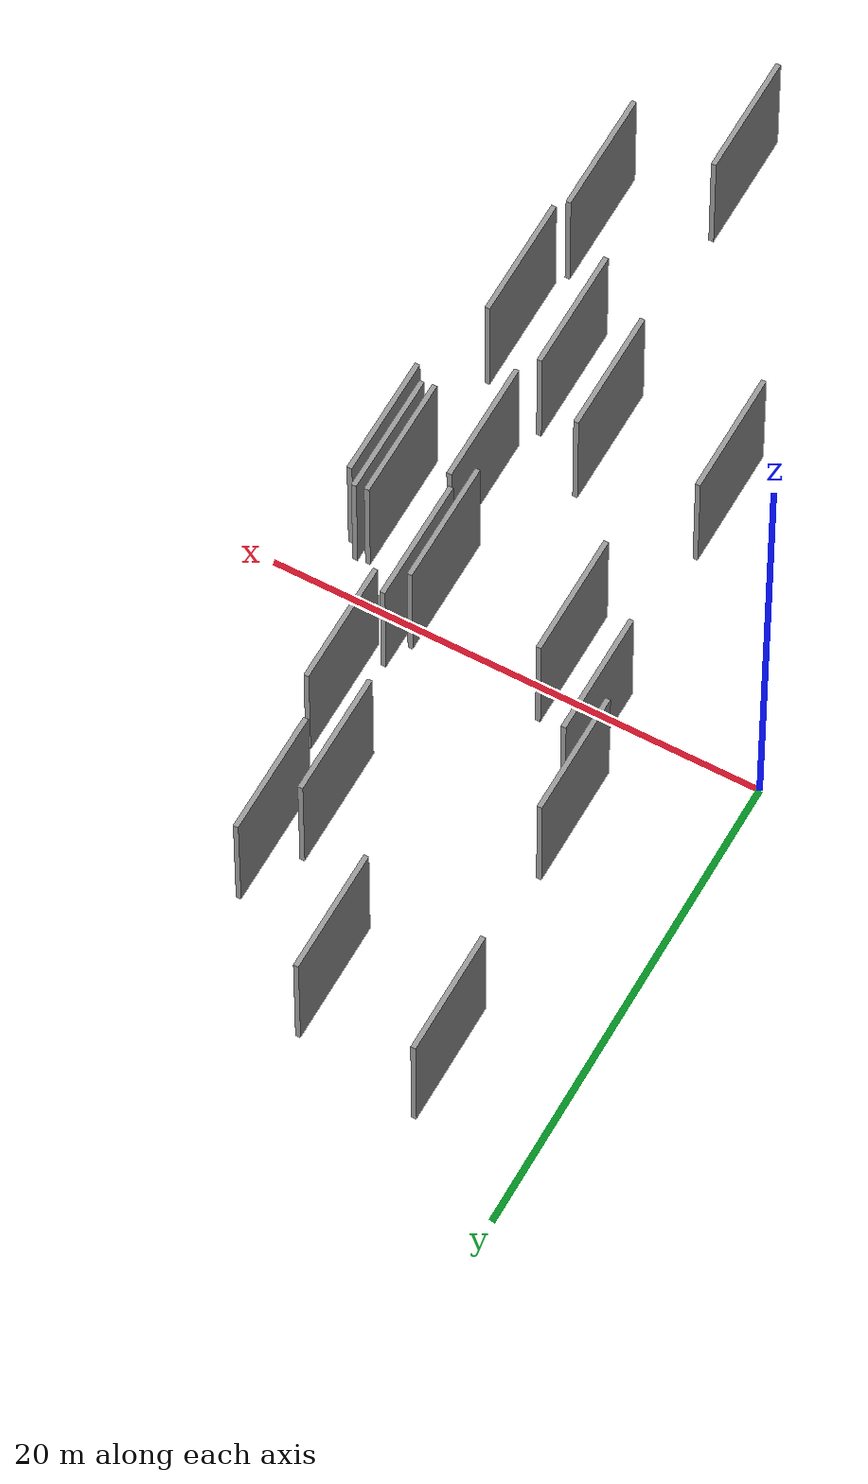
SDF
<sdf version="1.6">
 <world name="default">
  <scene>
   <sky><clouds><speed>12</speed></clouds></sky>
   <ambient>0.4 0.4 0.4 1</ambient>
   <background>0.7 0.7 0.7 1</background>
   <shadows>1</shadows>
  </scene>
  <gravity>0 0 -9.8066</gravity>
  <magnetic_field>6e-06 2.3e-05 -4.2e-05</magnetic_field>
  <physics default="0" name="default_physics" type="ode">
   <ode>
    <solver>
     <type>quick</type>
     <iters>10</iters>
     <sor>1.0</sor>
     <use_dynamic_moi_rescaling>0</use_dynamic_moi_rescaling>
    </solver>
    <constraints>
     <cfm>0</cfm>
     <erp>0.2</erp>
     <contact_max_correcting_vel>100</contact_max_correcting_vel>
     <contact_surface_layer>0.001</contact_surface_layer>
    </constraints>
   </ode>
   <max_step_size>0.004</max_step_size>
   <real_time_factor>1</real_time_factor>
   <real_time_update_rate>250</real_time_update_rate>
  </physics>
  <light name="sun" type="directional">
   <pose>0 0 10 0 0 0</pose>
   <diffuse>0.8 0.8 0.8 1</diffuse>
   <specular>0.2 0.2 0.2 1</specular>
   <attenuation>
    <range>1000</range>
    <constant>0.9</constant>
    <linear>0.01</linear>
    <quadratic>0.001</quadratic>
   </attenuation>
   <direction>-0.5 0.1 -0.9</direction>
  </light>
  <model name="grey_wall_1">
   <static>1</static>
   <pose>15.3775 -10.1875 5.0 0.000000 0.000000 1.570796</pose>
   <link name="link">
    <pose>0 0 2.50 0 0 0</pose>
    <collision name="collision"><geometry><box><size>5.00 0.2 5.00</size></box></geometry></collision>
    <visual name="visual">
     <cast_shadows>0</cast_shadows>
     <geometry><box><size>5.00 0.2 5.00</size></box></geometry>
     <material>
      <script>
       <uri>model://grey_wall/materials/scripts</uri>
       <uri>model://grey_wall/materials/textures</uri>
       <name>vrc/grey_wall</name>
      </script>
     </material>
    </visual>
   </link>
  </model>
  <model name="grey_wall_2">
   <static>1</static>
   <pose>16.4148 -1.9081 5.0 0.000000 0.000000 1.570796</pose>
   <link name="link">
    <pose>0 0 2.50 0 0 0</pose>
    <collision name="collision"><geometry><box><size>5.00 0.2 5.00</size></box></geometry></collision>
    <visual name="visual">
     <cast_shadows>0</cast_shadows>
     <geometry><box><size>5.00 0.2 5.00</size></box></geometry>
     <material>
      <script>
       <uri>model://grey_wall/materials/scripts</uri>
       <uri>model://grey_wall/materials/textures</uri>
       <name>vrc/grey_wall</name>
      </script>
     </material>
    </visual>
   </link>
  </model>
  <model name="grey_wall_3">
   <static>1</static>
   <pose>15.4398 -1.4060 5.0 0.000000 0.000000 1.570796</pose>
   <link name="link">
    <pose>0 0 2.50 0 0 0</pose>
    <collision name="collision"><geometry><box><size>5.00 0.2 5.00</size></box></geometry></collision>
    <visual name="visual">
     <cast_shadows>0</cast_shadows>
     <geometry><box><size>5.00 0.2 5.00</size></box></geometry>
     <material>
      <script>
       <uri>model://grey_wall/materials/scripts</uri>
       <uri>model://grey_wall/materials/textures</uri>
       <name>vrc/grey_wall</name>
      </script>
     </material>
    </visual>
   </link>
  </model>
  <model name="grey_wall_4">
   <static>1</static>
   <pose>11.1931 -19.5328 5.0 0.000000 0.000000 1.570796</pose>
   <link name="link">
    <pose>0 0 2.50 0 0 0</pose>
    <collision name="collision"><geometry><box><size>5.00 0.2 5.00</size></box></geometry></collision>
    <visual name="visual">
     <cast_shadows>0</cast_shadows>
     <geometry><box><size>5.00 0.2 5.00</size></box></geometry>
     <material>
      <script>
       <uri>model://grey_wall/materials/scripts</uri>
       <uri>model://grey_wall/materials/textures</uri>
       <name>vrc/grey_wall</name>
      </script>
     </material>
    </visual>
   </link>
  </model>
  <model name="grey_wall_5">
   <static>1</static>
   <pose>13.1981 -3.3880 5.0 0.000000 0.000000 1.570796</pose>
   <link name="link">
    <pose>0 0 2.50 0 0 0</pose>
    <collision name="collision"><geometry><box><size>5.00 0.2 5.00</size></box></geometry></collision>
    <visual name="visual">
     <cast_shadows>0</cast_shadows>
     <geometry><box><size>5.00 0.2 5.00</size></box></geometry>
     <material>
      <script>
       <uri>model://grey_wall/materials/scripts</uri>
       <uri>model://grey_wall/materials/textures</uri>
       <name>vrc/grey_wall</name>
      </script>
     </material>
    </visual>
   </link>
  </model>
  <model name="grey_wall_6">
   <static>1</static>
   <pose>4.6609 3.8503 5.0 0.000000 0.000000 1.570796</pose>
   <link name="link">
    <pose>0 0 2.50 0 0 0</pose>
    <collision name="collision"><geometry><box><size>5.00 0.2 5.00</size></box></geometry></collision>
    <visual name="visual">
     <cast_shadows>0</cast_shadows>
     <geometry><box><size>5.00 0.2 5.00</size></box></geometry>
     <material>
      <script>
       <uri>model://grey_wall/materials/scripts</uri>
       <uri>model://grey_wall/materials/textures</uri>
       <name>vrc/grey_wall</name>
      </script>
     </material>
    </visual>
   </link>
  </model>
  <model name="grey_wall_7">
   <static>1</static>
   <pose>3.0656 17.5782 5.0 0.000000 0.000000 1.570796</pose>
   <link name="link">
    <pose>0 0 2.50 0 0 0</pose>
    <collision name="collision"><geometry><box><size>5.00 0.2 5.00</size></box></geometry></collision>
    <visual name="visual">
     <cast_shadows>0</cast_shadows>
     <geometry><box><size>5.00 0.2 5.00</size></box></geometry>
     <material>
      <script>
       <uri>model://grey_wall/materials/scripts</uri>
       <uri>model://grey_wall/materials/textures</uri>
       <name>vrc/grey_wall</name>
      </script>
     </material>
    </visual>
   </link>
  </model>
  <model name="grey_wall_8">
   <static>1</static>
   <pose>12.6798 -9.1281 5.0 0.000000 0.000000 1.570796</pose>
   <link name="link">
    <pose>0 0 2.50 0 0 0</pose>
    <collision name="collision"><geometry><box><size>5.00 0.2 5.00</size></box></geometry></collision>
    <visual name="visual">
     <cast_shadows>0</cast_shadows>
     <geometry><box><size>5.00 0.2 5.00</size></box></geometry>
     <material>
      <script>
       <uri>model://grey_wall/materials/scripts</uri>
       <uri>model://grey_wall/materials/textures</uri>
       <name>vrc/grey_wall</name>
      </script>
     </material>
    </visual>
   </link>
  </model>
  <model name="grey_wall_9">
   <static>1</static>
   <pose>13.5523 6.3333 5.0 0.000000 0.000000 1.570796</pose>
   <link name="link">
    <pose>0 0 2.50 0 0 0</pose>
    <collision name="collision"><geometry><box><size>5.00 0.2 5.00</size></box></geometry></collision>
    <visual name="visual">
     <cast_shadows>0</cast_shadows>
     <geometry><box><size>5.00 0.2 5.00</size></box></geometry>
     <material>
      <script>
       <uri>model://grey_wall/materials/scripts</uri>
       <uri>model://grey_wall/materials/textures</uri>
       <name>vrc/grey_wall</name>
      </script>
     </material>
    </visual>
   </link>
  </model>
  <model name="grey_wall_10">
   <static>1</static>
   <pose>6.9719 1.4246 5.0 0.000000 0.000000 1.570796</pose>
   <link name="link">
    <pose>0 0 2.50 0 0 0</pose>
    <collision name="collision"><geometry><box><size>5.00 0.2 5.00</size></box></geometry></collision>
    <visual name="visual">
     <cast_shadows>0</cast_shadows>
     <geometry><box><size>5.00 0.2 5.00</size></box></geometry>
     <material>
      <script>
       <uri>model://grey_wall/materials/scripts</uri>
       <uri>model://grey_wall/materials/textures</uri>
       <name>vrc/grey_wall</name>
      </script>
     </material>
    </visual>
   </link>
  </model>
  <model name="grey_wall_11">
   <static>1</static>
   <pose>3.8430 7.0971 5.0 0.000000 0.000000 1.570796</pose>
   <link name="link">
    <pose>0 0 2.50 0 0 0</pose>
    <collision name="collision"><geometry><box><size>5.00 0.2 5.00</size></box></geometry></collision>
    <visual name="visual">
     <cast_shadows>0</cast_shadows>
     <geometry><box><size>5.00 0.2 5.00</size></box></geometry>
     <material>
      <script>
       <uri>model://grey_wall/materials/scripts</uri>
       <uri>model://grey_wall/materials/textures</uri>
       <name>vrc/grey_wall</name>
      </script>
     </material>
    </visual>
   </link>
  </model>
  <model name="grey_wall_12">
   <static>1</static>
   <pose>15.9204 -1.3345 5.0 0.000000 0.000000 1.570796</pose>
   <link name="link">
    <pose>0 0 2.50 0 0 0</pose>
    <collision name="collision"><geometry><box><size>5.00 0.2 5.00</size></box></geometry></collision>
    <visual name="visual">
     <cast_shadows>0</cast_shadows>
     <geometry><box><size>5.00 0.2 5.00</size></box></geometry>
     <material>
      <script>
       <uri>model://grey_wall/materials/scripts</uri>
       <uri>model://grey_wall/materials/textures</uri>
       <name>vrc/grey_wall</name>
      </script>
     </material>
    </visual>
   </link>
  </model>
  <model name="grey_wall_13">
   <static>1</static>
   <pose>8.1633 16.6958 5.0 0.000000 0.000000 1.570796</pose>
   <link name="link">
    <pose>0 0 2.50 0 0 0</pose>
    <collision name="collision"><geometry><box><size>5.00 0.2 5.00</size></box></geometry></collision>
    <visual name="visual">
     <cast_shadows>0</cast_shadows>
     <geometry><box><size>5.00 0.2 5.00</size></box></geometry>
     <material>
      <script>
       <uri>model://grey_wall/materials/scripts</uri>
       <uri>model://grey_wall/materials/textures</uri>
       <name>vrc/grey_wall</name>
      </script>
     </material>
    </visual>
   </link>
  </model>
  <model name="grey_wall_14">
   <static>1</static>
   <pose>12.7078 12.8495 5.0 0.000000 0.000000 1.570796</pose>
   <link name="link">
    <pose>0 0 2.50 0 0 0</pose>
    <collision name="collision"><geometry><box><size>5.00 0.2 5.00</size></box></geometry></collision>
    <visual name="visual">
     <cast_shadows>0</cast_shadows>
     <geometry><box><size>5.00 0.2 5.00</size></box></geometry>
     <material>
      <script>
       <uri>model://grey_wall/materials/scripts</uri>
       <uri>model://grey_wall/materials/textures</uri>
       <name>vrc/grey_wall</name>
      </script>
     </material>
    </visual>
   </link>
  </model>
  <model name="grey_wall_15">
   <static>1</static>
   <pose>15.0083 -15.5769 5.0 0.000000 0.000000 1.570796</pose>
   <link name="link">
    <pose>0 0 2.50 0 0 0</pose>
    <collision name="collision"><geometry><box><size>5.00 0.2 5.00</size></box></geometry></collision>
    <visual name="visual">
     <cast_shadows>0</cast_shadows>
     <geometry><box><size>5.00 0.2 5.00</size></box></geometry>
     <material>
      <script>
       <uri>model://grey_wall/materials/scripts</uri>
       <uri>model://grey_wall/materials/textures</uri>
       <name>vrc/grey_wall</name>
      </script>
     </material>
    </visual>
   </link>
  </model>
  <model name="grey_wall_16">
   <static>1</static>
   <pose>12.8700 2.0667 5.0 0.000000 0.000000 1.570796</pose>
   <link name="link">
    <pose>0 0 2.50 0 0 0</pose>
    <collision name="collision"><geometry><box><size>5.00 0.2 5.00</size></box></geometry></collision>
    <visual name="visual">
     <cast_shadows>0</cast_shadows>
     <geometry><box><size>5.00 0.2 5.00</size></box></geometry>
     <material>
      <script>
       <uri>model://grey_wall/materials/scripts</uri>
       <uri>model://grey_wall/materials/textures</uri>
       <name>vrc/grey_wall</name>
      </script>
     </material>
    </visual>
   </link>
  </model>
  <model name="grey_wall_17">
   <static>1</static>
   <pose>10.2888 -7.4507 5.0 0.000000 0.000000 1.570796</pose>
   <link name="link">
    <pose>0 0 2.50 0 0 0</pose>
    <collision name="collision"><geometry><box><size>5.00 0.2 5.00</size></box></geometry></collision>
    <visual name="visual">
     <cast_shadows>0</cast_shadows>
     <geometry><box><size>5.00 0.2 5.00</size></box></geometry>
     <material>
      <script>
       <uri>model://grey_wall/materials/scripts</uri>
       <uri>model://grey_wall/materials/textures</uri>
       <name>vrc/grey_wall</name>
      </script>
     </material>
    </visual>
   </link>
  </model>
  <model name="grey_wall_18">
   <static>1</static>
   <pose>5.2598 -7.2109 5.0 0.000000 0.000000 1.570796</pose>
   <link name="link">
    <pose>0 0 2.50 0 0 0</pose>
    <collision name="collision"><geometry><box><size>5.00 0.2 5.00</size></box></geometry></collision>
    <visual name="visual">
     <cast_shadows>0</cast_shadows>
     <geometry><box><size>5.00 0.2 5.00</size></box></geometry>
     <material>
      <script>
       <uri>model://grey_wall/materials/scripts</uri>
       <uri>model://grey_wall/materials/textures</uri>
       <name>vrc/grey_wall</name>
      </script>
     </material>
    </visual>
   </link>
  </model>
  <model name="grey_wall_19">
   <static>1</static>
   <pose>12.3949 0.9580 5.0 0.000000 0.000000 1.570796</pose>
   <link name="link">
    <pose>0 0 2.50 0 0 0</pose>
    <collision name="collision"><geometry><box><size>5.00 0.2 5.00</size></box></geometry></collision>
    <visual name="visual">
     <cast_shadows>0</cast_shadows>
     <geometry><box><size>5.00 0.2 5.00</size></box></geometry>
     <material>
      <script>
       <uri>model://grey_wall/materials/scripts</uri>
       <uri>model://grey_wall/materials/textures</uri>
       <name>vrc/grey_wall</name>
      </script>
     </material>
    </visual>
   </link>
  </model>
  <model name="grey_wall_20">
   <static>1</static>
   <pose>11.5092 10.4126 5.0 0.000000 0.000000 1.570796</pose>
   <link name="link">
    <pose>0 0 2.50 0 0 0</pose>
    <collision name="collision"><geometry><box><size>5.00 0.2 5.00</size></box></geometry></collision>
    <visual name="visual">
     <cast_shadows>0</cast_shadows>
     <geometry><box><size>5.00 0.2 5.00</size></box></geometry>
     <material>
      <script>
       <uri>model://grey_wall/materials/scripts</uri>
       <uri>model://grey_wall/materials/textures</uri>
       <name>vrc/grey_wall</name>
      </script>
     </material>
    </visual>
   </link>
  </model>
 </world>
</sdf>
